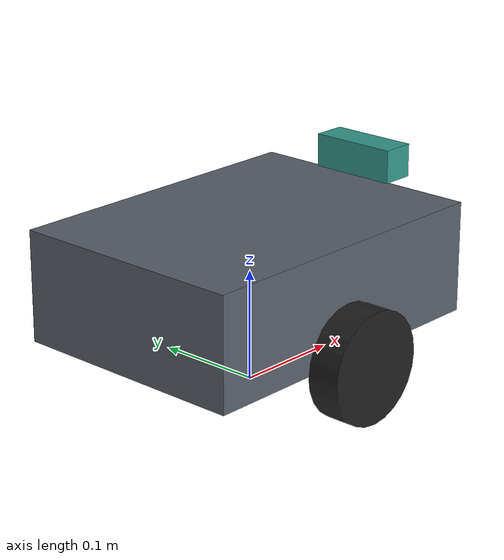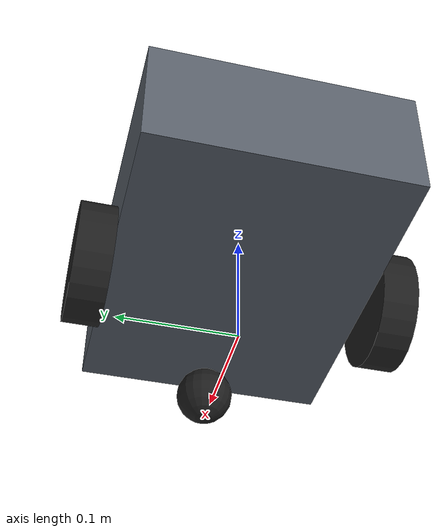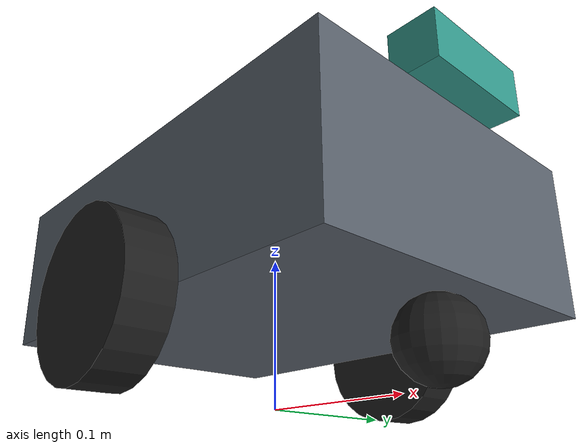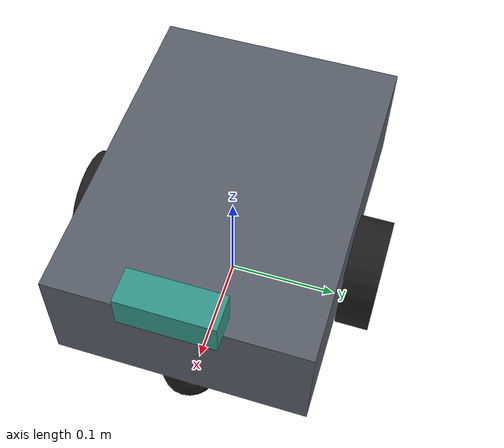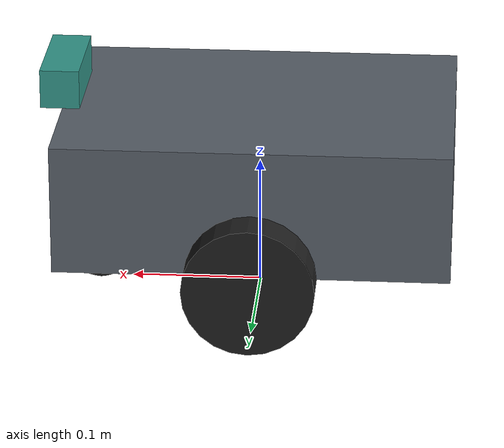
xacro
<?xml version="1.0"?>
<!-- edge_bot: minimal differential-drive robot with an RGB camera.
     Publishes /camera/image_raw via the gazebo_ros camera plugin so the
     perception node works without TurtleBot3. -->
<robot name="edge_bot" xmlns:xacro="http://www.ros.org/wiki/xacro">

  <xacro:property name="body_l" value="0.30"/>
  <xacro:property name="body_w" value="0.22"/>
  <xacro:property name="body_h" value="0.10"/>
  <xacro:property name="wheel_r" value="0.05"/>
  <xacro:property name="wheel_w" value="0.03"/>

  <material name="body_gray"><color rgba="0.35 0.38 0.42 1"/></material>
  <material name="wheel_dark"><color rgba="0.12 0.12 0.12 1"/></material>
  <material name="cam_teal"><color rgba="0.20 0.60 0.55 1"/></material>

  <link name="base_footprint"/>

  <link name="base_link">
    <visual>
      <geometry><box size="${body_l} ${body_w} ${body_h}"/></geometry>
      <material name="body_gray"/>
    </visual>
    <collision>
      <geometry><box size="${body_l} ${body_w} ${body_h}"/></geometry>
    </collision>
    <inertial>
      <mass value="2.0"/>
      <inertia ixx="0.01" ixy="0" ixz="0" iyy="0.01" iyz="0" izz="0.02"/>
    </inertial>
  </link>
  <joint name="base_joint" type="fixed">
    <parent link="base_footprint"/>
    <child link="base_link"/>
    <origin xyz="0 0 ${wheel_r + body_h/2}"/>
  </joint>

  <xacro:macro name="wheel" params="side y">
    <link name="wheel_${side}">
      <visual>
        <origin rpy="1.5708 0 0"/>
        <geometry><cylinder radius="${wheel_r}" length="${wheel_w}"/></geometry>
        <material name="wheel_dark"/>
      </visual>
      <collision>
        <origin rpy="1.5708 0 0"/>
        <geometry><cylinder radius="${wheel_r}" length="${wheel_w}"/></geometry>
      </collision>
      <inertial>
        <mass value="0.2"/>
        <inertia ixx="0.0002" ixy="0" ixz="0" iyy="0.0002" iyz="0" izz="0.0003"/>
      </inertial>
    </link>
    <joint name="wheel_${side}_joint" type="continuous">
      <parent link="base_link"/>
      <child link="wheel_${side}"/>
      <origin xyz="0 ${y} ${-body_h/2}"/>
      <axis xyz="0 1 0"/>
    </joint>
  </xacro:macro>
  <xacro:wheel side="left"  y="${(body_w + wheel_w)/2}"/>
  <xacro:wheel side="right" y="${-(body_w + wheel_w)/2}"/>

  <link name="caster">
    <visual><geometry><sphere radius="${wheel_r/2}"/></geometry>
      <material name="wheel_dark"/></visual>
    <collision><geometry><sphere radius="${wheel_r/2}"/></geometry></collision>
    <inertial><mass value="0.05"/>
      <inertia ixx="1e-5" ixy="0" ixz="0" iyy="1e-5" iyz="0" izz="1e-5"/>
    </inertial>
  </link>
  <joint name="caster_joint" type="fixed">
    <parent link="base_link"/>
    <child link="caster"/>
    <origin xyz="${body_l/2 - wheel_r/2} 0 ${-body_h/2 - wheel_r/2}"/>
  </joint>

  <link name="camera_link">
    <visual><geometry><box size="0.03 0.08 0.03"/></geometry>
      <material name="cam_teal"/></visual>
    <inertial><mass value="0.05"/>
      <inertia ixx="1e-5" ixy="0" ixz="0" iyy="1e-5" iyz="0" izz="1e-5"/>
    </inertial>
  </link>
  <joint name="camera_joint" type="fixed">
    <parent link="base_link"/>
    <child link="camera_link"/>
    <origin xyz="${body_l/2} 0 ${body_h/2 + 0.02}"/>
  </joint>
  <link name="camera_optical"/>
  <joint name="camera_optical_joint" type="fixed">
    <parent link="camera_link"/>
    <child link="camera_optical"/>
    <origin rpy="-1.5708 0 -1.5708"/>
  </joint>

  <!-- Gazebo classic plugins (ros-humble-gazebo-ros-pkgs) -->
  <gazebo reference="camera_link">
    <sensor type="camera" name="rgb_camera">
      <update_rate>15.0</update_rate>
      <camera>
        <horizontal_fov>1.2</horizontal_fov>
        <image><width>640</width><height>480</height><format>R8G8B8</format></image>
        <clip><near>0.05</near><far>20.0</far></clip>
      </camera>
      <plugin name="camera_controller" filename="libgazebo_ros_camera.so">
        <ros><remapping>~/image_raw:=/camera/image_raw</remapping></ros>
        <camera_name>camera</camera_name>
        <frame_name>camera_optical</frame_name>
      </plugin>
    </sensor>
  </gazebo>

  <gazebo>
    <plugin name="diff_drive" filename="libgazebo_ros_diff_drive.so">
      <left_joint>wheel_left_joint</left_joint>
      <right_joint>wheel_right_joint</right_joint>
      <wheel_separation>${body_w + wheel_w}</wheel_separation>
      <wheel_diameter>${2*wheel_r}</wheel_diameter>
      <command_topic>cmd_vel</command_topic>
      <publish_odom>true</publish_odom>
      <odometry_frame>odom</odometry_frame>
      <robot_base_frame>base_footprint</robot_base_frame>
    </plugin>
  </gazebo>
</robot>
